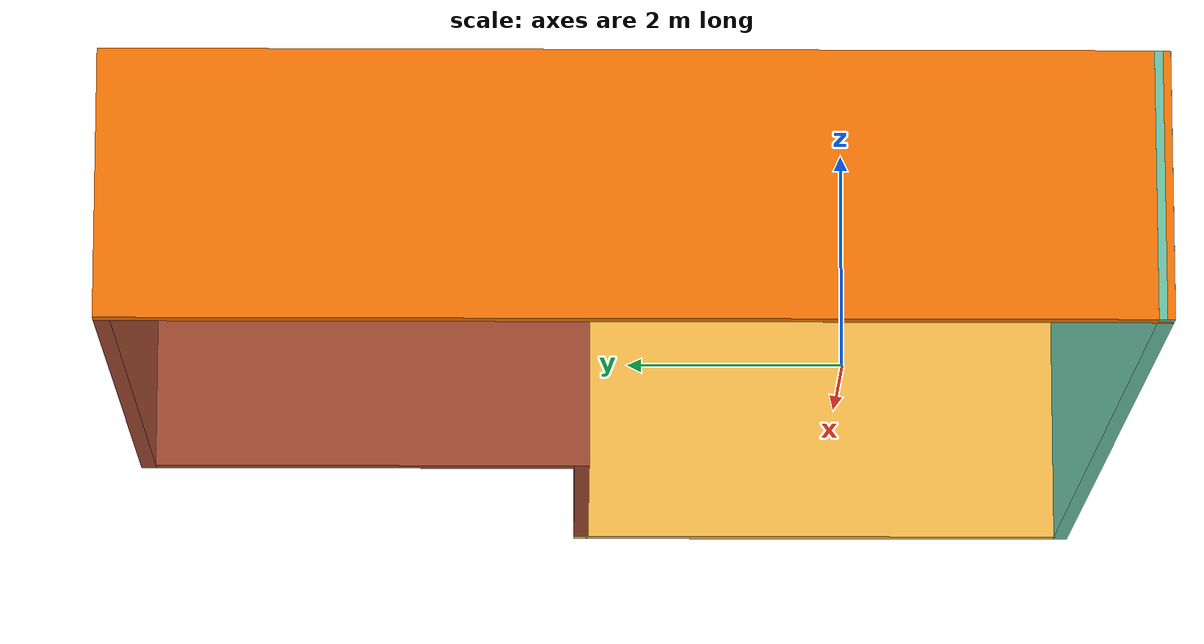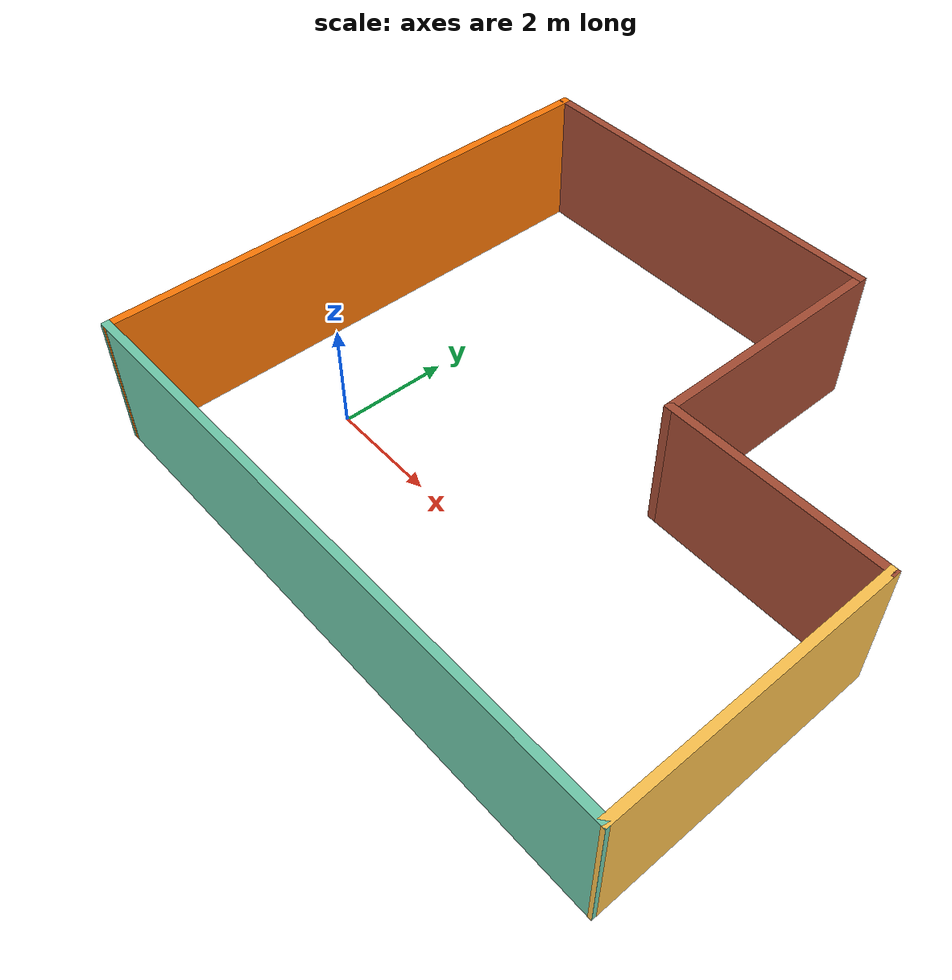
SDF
<?xml version='1.0'?>
<sdf version='1.6'>
  <model name='Untitled'>
    <pose frame=''>3.37513 1.9584 0 0 -0 0</pose>
    <link name='Wall_0'>
      <collision name='Wall_0_Collision'>
        <geometry>
          <box>
            <size>9.75 0.15 2.5</size>
          </box>
        </geometry>
        <pose frame=''>0 0 1.25 0 -0 0</pose>
      </collision>
      <visual name='Wall_0_Visual'>
        <pose frame=''>0 0 1.25 0 -0 0</pose>
        <geometry>
          <box>
            <size>9.75 0.15 2.5</size>
          </box>
        </geometry>
        <material>
          <script>
            <uri>file://media/materials/scripts/gazebo.material</uri>
            <name>Gazebo/Grey</name>
          </script>
          <ambient>0.996078 0.47451 0.0196078 1</ambient>
        </material>
        <meta>
          <layer>0</layer>
        </meta>
      </visual>
      <pose frame=''>-5.35 0.000522 0 0 -0 1.5708</pose>
    </link>
    <link name='Wall_1'>
      <collision name='Wall_1_Collision'>
        <geometry>
          <box>
            <size>7 0.15 2.5</size>
          </box>
        </geometry>
        <pose frame=''>0 0 1.25 0 -0 0</pose>
      </collision>
      <visual name='Wall_1_Visual'>
        <pose frame=''>0 0 1.25 0 -0 0</pose>
        <geometry>
          <box>
            <size>7 0.15 2.5</size>
          </box>
        </geometry>
        <material>
          <script>
            <uri>file://media/materials/scripts/gazebo.material</uri>
            <name>Gazebo/Bricks</name>
          </script>
          <ambient>1 1 1 1</ambient>
        </material>
        <meta>
          <layer>0</layer>
        </meta>
      </visual>
      <pose frame=''>-1.925 4.80052 0 0 -0 0</pose>
    </link>
    <link name='Wall_2'>
      <collision name='Wall_2_Collision'>
        <geometry>
          <box>
            <size>4.5 0.15 2.5</size>
          </box>
        </geometry>
        <pose frame=''>0 0 1.25 0 -0 0</pose>
      </collision>
      <visual name='Wall_2_Visual'>
        <pose frame=''>0 0 1.25 0 -0 0</pose>
        <geometry>
          <box>
            <size>4.5 0.15 2.5</size>
          </box>
        </geometry>
        <material>
          <script>
            <uri>file://media/materials/scripts/gazebo.material</uri>
            <name>Gazebo/Bricks</name>
          </script>
          <ambient>1 1 1 1</ambient>
        </material>
        <meta>
          <layer>0</layer>
        </meta>
      </visual>
      <pose frame=''>1.5 2.62552 0 0 0 -1.5708</pose>
    </link>
    <link name='Wall_3'>
      <collision name='Wall_3_Collision'>
        <geometry>
          <box>
            <size>4 0.15 2.5</size>
          </box>
        </geometry>
        <pose frame=''>0 0 1.25 0 -0 0</pose>
      </collision>
      <visual name='Wall_3_Visual'>
        <pose frame=''>0 0 1.25 0 -0 0</pose>
        <geometry>
          <box>
            <size>4 0.15 2.5</size>
          </box>
        </geometry>
        <material>
          <script>
            <uri>file://media/materials/scripts/gazebo.material</uri>
            <name>Gazebo/Bricks</name>
          </script>
          <ambient>1 1 1 1</ambient>
        </material>
        <meta>
          <layer>0</layer>
        </meta>
      </visual>
      <pose frame=''>3.425 0.450522 0 0 -0 0</pose>
    </link>
    <link name='Wall_4'>
      <collision name='Wall_4_Collision'>
        <geometry>
          <box>
            <size>5.25 0.15 2.5</size>
          </box>
        </geometry>
        <pose frame=''>0 0 1.25 0 -0 0</pose>
      </collision>
      <visual name='Wall_4_Visual'>
        <pose frame=''>0 0 1.25 0 -0 0</pose>
        <geometry>
          <box>
            <size>5.25 0.15 2.5</size>
          </box>
        </geometry>
        <material>
          <script>
            <uri>file://media/materials/scripts/gazebo.material</uri>
            <name>Gazebo/Grey</name>
          </script>
          <ambient>1 0.764706 0.305882 1</ambient>
        </material>
        <meta>
          <layer>0</layer>
        </meta>
      </visual>
      <pose frame=''>5.35 -2.09948 0 0 0 -1.5708</pose>
    </link>
    <link name='Wall_5'>
      <collision name='Wall_5_Collision'>
        <geometry>
          <box>
            <size>10.8511 0.15 2.5</size>
          </box>
        </geometry>
        <pose frame=''>0 0 1.25 0 -0 0</pose>
      </collision>
      <visual name='Wall_5_Visual'>
        <pose frame=''>0 0 1.25 0 -0 0</pose>
        <geometry>
          <box>
            <size>10.8511 0.15 2.5</size>
          </box>
        </geometry>
        <material>
          <script>
            <uri>file://media/materials/scripts/gazebo.material</uri>
            <name>Gazebo/Grey</name>
          </script>
          <ambient>0.435294 0.796078 0.67451 1</ambient>
        </material>
        <meta>
          <layer>0</layer>
        </meta>
      </visual>
      <pose frame=''>0 -4.72448 0 0 0 -3.12758</pose>
    </link>
    <static>1</static>
  </model>
</sdf>
